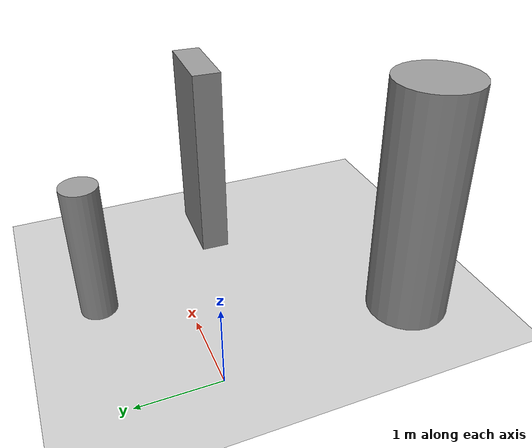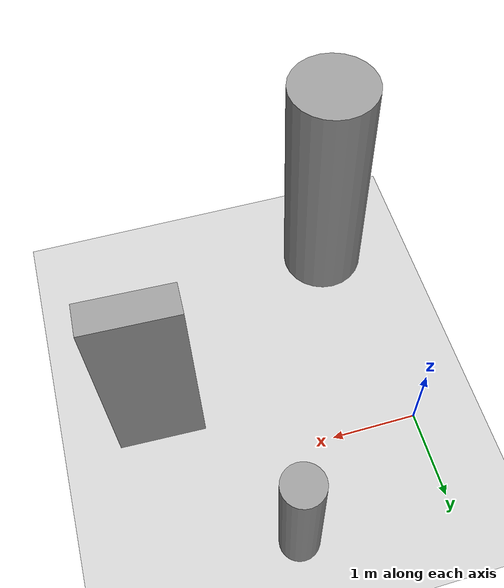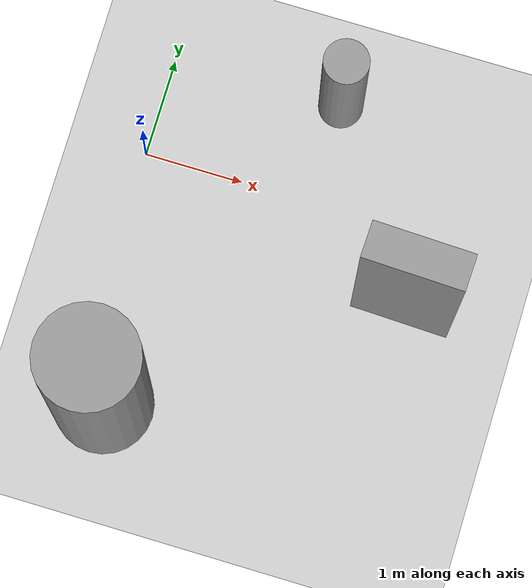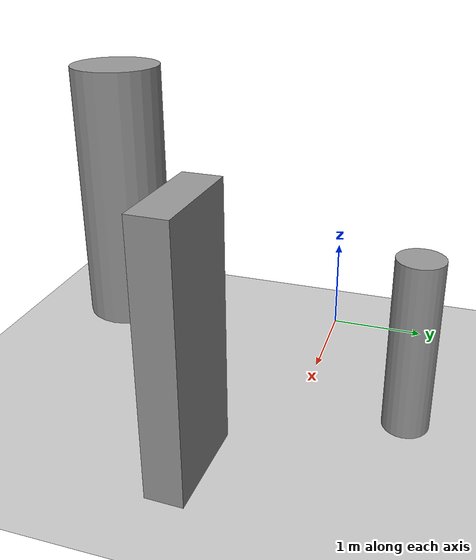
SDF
<sdf version="1.7">
 <world name="default">
  <plugin name="set_entity_state_plugin" filename="libset_entity_state.so">
   <robot_name>point</robot_name>
  </plugin>
  <plugin name="gazebo_ros_state" filename="libgazebo_ros_state.so">
   <ros><argument>model_states:=model_states_demo</argument></ros>
   <update_rate>1.0</update_rate>
  </plugin>
  <light name="sun" type="directional">
   <pose>0 0 10 0 -0 0</pose>
   <diffuse>0.8 0.8 0.8 1</diffuse>
   <specular>0.2 0.2 0.2 1</specular>
   <attenuation>
    <range>1000</range>
    <constant>0.9</constant>
    <linear>0.01</linear>
    <quadratic>0.001</quadratic>
   </attenuation>
   <direction>-0.5 0.1 -0.9</direction>
   <spot><inner_angle>0</inner_angle><outer_angle>0</outer_angle><falloff>0</falloff></spot>
  </light>
  <model name="ground_plane">
   <static>1</static>
   <link name="link">
    <collision name="collision">
     <geometry><plane><normal>0 0 1</normal><size>100 100</size></plane></geometry>
     <surface><friction><ode><mu>100</mu><mu2>50</mu2></ode></friction></surface>
    </collision>
    <visual name="visual">
     <cast_shadows>0</cast_shadows>
     <geometry><plane><normal>0 0 1</normal><size>100 100</size></plane></geometry>
     <material>
      <script><uri>file://media/materials/scripts/gazebo.material</uri><name>Gazebo/Grey</name></script>
     </material>
    </visual>
   </link>
  </model>
  <gravity>0 0 -9.8</gravity>
  <magnetic_field>6e-06 2.3e-05 -4.2e-05</magnetic_field>
  <atmosphere type="adiabatic"/>
  <physics type="ode">
   <max_step_size>0.001</max_step_size>
   <real_time_factor>1</real_time_factor>
   <real_time_update_rate>1000</real_time_update_rate>
  </physics>
  <scene><ambient>0.4 0.4 0.4 1</ambient><background>0.7 0.7 0.7 1</background><shadows>1</shadows></scene>
  <audio><device>default</device></audio>
  <spherical_coordinates>
   <surface_model>EARTH_WGS84</surface_model>
   <latitude_deg>0</latitude_deg>
   <longitude_deg>0</longitude_deg>
   <elevation>0</elevation>
   <heading_deg>0</heading_deg>
  </spherical_coordinates>
  <model name="unit_box">
   <pose>2.89939 -0.728658 1.28001 -1e-06 -0 -0.033411</pose>
   <link name="link">
    <inertial>
     <mass>1</mass>
     <inertia>
      <ixx>0.166667</ixx>
      <ixy>0</ixy>
      <ixz>0</ixz>
      <iyy>0.166667</iyy>
      <iyz>0</iyz>
      <izz>0.166667</izz>
     </inertia>
    </inertial>
    <collision name="collision"><geometry><box><size>1 0.363089 2.56001</size></box></geometry></collision>
    <visual name="visual">
     <geometry><box><size>1 0.363089 2.56001</size></box></geometry>
     <material>
      <script><name>Gazebo/Grey</name><uri>file://media/materials/scripts/gazebo.material</uri></script>
     </material>
    </visual>
   </link>
  </model>
  <model name="unit_cylinder">
   <pose>1.7289 1.03782 0.87527 1e-06 -1e-06 0.018676</pose>
   <link name="link">
    <inertial>
     <mass>1</mass>
     <inertia><ixx>0.145833</ixx><ixy>0</ixy><ixz>0</ixz><iyy>0.145833</iyy><iyz>0</iyz><izz>0.125</izz></inertia>
    </inertial>
    <collision name="collision">
     <geometry><cylinder><radius>0.226032</radius><length>1.75054</length></cylinder></geometry>
    </collision>
    <visual name="visual">
     <geometry><cylinder><radius>0.226032</radius><length>1.75054</length></cylinder></geometry>
     <material>
      <script><name>Gazebo/Grey</name><uri>file://media/materials/scripts/gazebo.material</uri></script>
     </material>
    </visual>
   </link>
  </model>
  <model name="unit_cylinder_0">
   <pose>0.34094 -2.53355 1.49412 -0 -0 -8.6e-05</pose>
   <link name="link">
    <inertial>
     <mass>1</mass>
     <inertia><ixx>0.145833</ixx><ixy>0</ixy><ixz>0</ixz><iyy>0.145833</iyy><iyz>0</iyz><izz>0.125</izz></inertia>
    </inertial>
    <collision name="collision">
     <geometry><cylinder><radius>0.5</radius><length>2.98824</length></cylinder></geometry>
    </collision>
    <visual name="visual">
     <geometry><cylinder><radius>0.5</radius><length>2.98824</length></cylinder></geometry>
     <material>
      <script><name>Gazebo/Grey</name><uri>file://media/materials/scripts/gazebo.material</uri></script>
     </material>
    </visual>
   </link>
  </model>
 </world>
</sdf>
